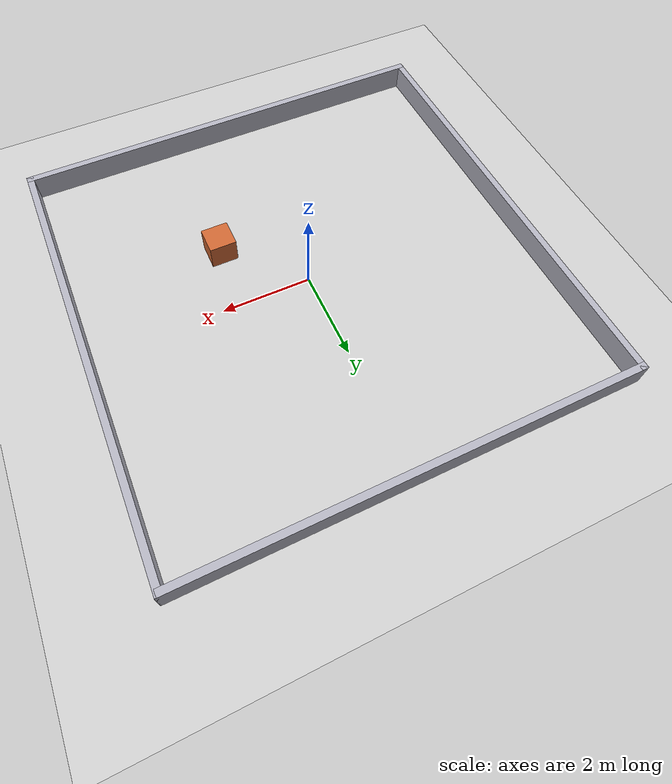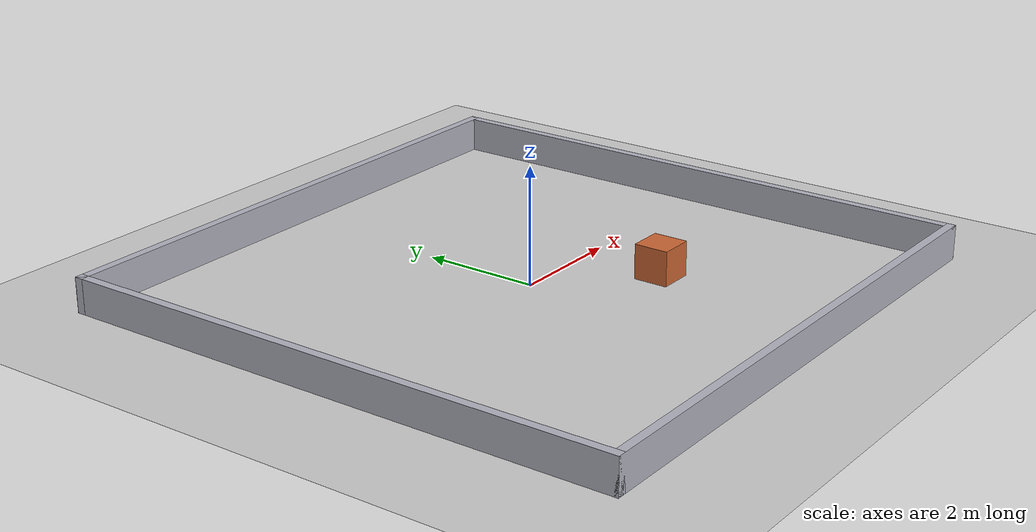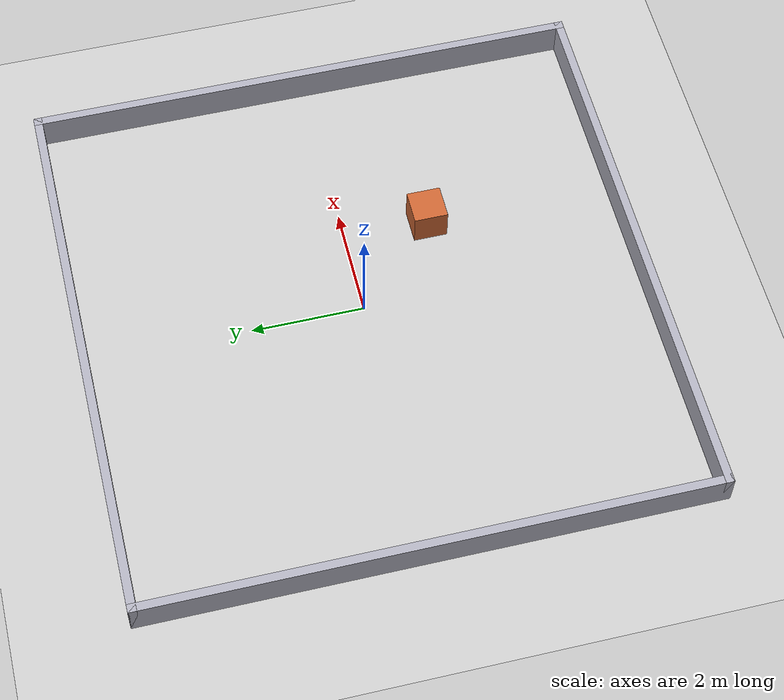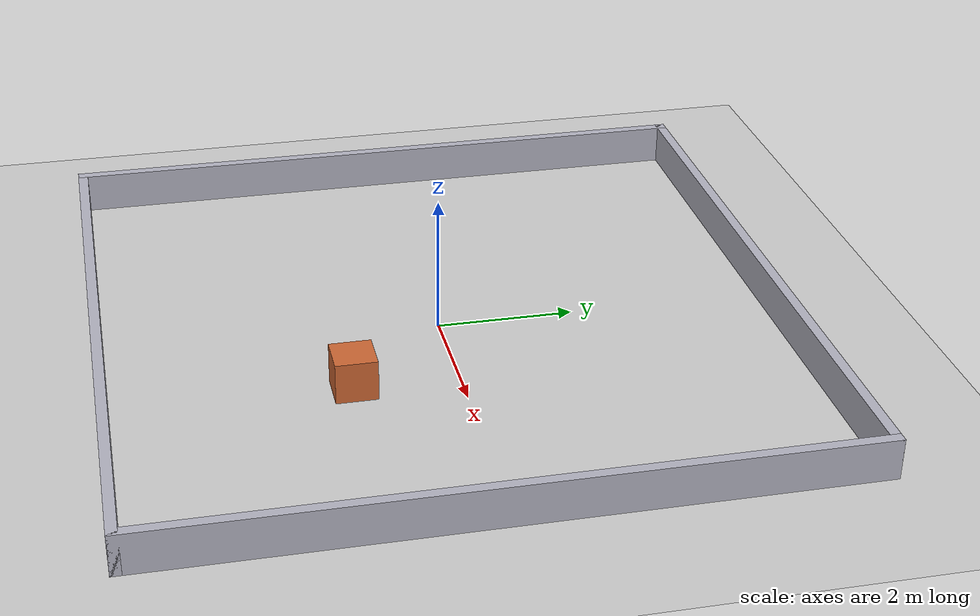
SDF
<?xml version="1.0"?>
<!-- 由 rl_nav/scripts/gen_room_assets.py 生成。改 room_spec.py 后重新生成。 -->
<sdf version="1.6">
  <world name="rl_room">
    <include><uri>model://sun</uri></include>
    <include><uri>model://ground_plane</uri></include>
    <physics type="ode">
      <max_step_size>0.001</max_step_size>
      <real_time_update_rate>1000</real_time_update_rate>
    </physics>
    <model name="wall_west">
      <static>true</static>
      <pose>-4.9250 0.0000 0.3000 0 0 0</pose>
      <link name="link">
        <collision name="collision">
          <geometry>
            <box><size>0.1500 10.0000 0.6000</size></box>
          </geometry>
        </collision>
        <visual name="visual">
          <geometry>
            <box><size>0.1500 10.0000 0.6000</size></box>
          </geometry>
          <material>
            <ambient>0.700 0.700 0.750 1</ambient>
            <diffuse>0.700 0.700 0.750 1</diffuse>
          </material>
        </visual>
      </link>
    </model>
    <model name="wall_east">
      <static>true</static>
      <pose>4.9250 0.0000 0.3000 0 0 0</pose>
      <link name="link">
        <collision name="collision">
          <geometry>
            <box><size>0.1500 10.0000 0.6000</size></box>
          </geometry>
        </collision>
        <visual name="visual">
          <geometry>
            <box><size>0.1500 10.0000 0.6000</size></box>
          </geometry>
          <material>
            <ambient>0.700 0.700 0.750 1</ambient>
            <diffuse>0.700 0.700 0.750 1</diffuse>
          </material>
        </visual>
      </link>
    </model>
    <model name="wall_south">
      <static>true</static>
      <pose>0.0000 -4.9250 0.3000 0 0 0</pose>
      <link name="link">
        <collision name="collision">
          <geometry>
            <box><size>10.0000 0.1500 0.6000</size></box>
          </geometry>
        </collision>
        <visual name="visual">
          <geometry>
            <box><size>10.0000 0.1500 0.6000</size></box>
          </geometry>
          <material>
            <ambient>0.700 0.700 0.750 1</ambient>
            <diffuse>0.700 0.700 0.750 1</diffuse>
          </material>
        </visual>
      </link>
    </model>
    <model name="wall_north">
      <static>true</static>
      <pose>0.0000 4.9250 0.3000 0 0 0</pose>
      <link name="link">
        <collision name="collision">
          <geometry>
            <box><size>10.0000 0.1500 0.6000</size></box>
          </geometry>
        </collision>
        <visual name="visual">
          <geometry>
            <box><size>10.0000 0.1500 0.6000</size></box>
          </geometry>
          <material>
            <ambient>0.700 0.700 0.750 1</ambient>
            <diffuse>0.700 0.700 0.750 1</diffuse>
          </material>
        </visual>
      </link>
    </model>
    <model name="obstacle">
      <static>true</static>
      <pose>1.5000 -1.5000 0.3000 0 0 0</pose>
      <link name="link">
        <collision name="collision">
          <geometry>
            <box><size>0.6000 0.6000 0.6000</size></box>
          </geometry>
        </collision>
        <visual name="visual">
          <geometry>
            <box><size>0.6000 0.6000 0.6000</size></box>
          </geometry>
          <material>
            <ambient>0.800 0.400 0.200 1</ambient>
            <diffuse>0.800 0.400 0.200 1</diffuse>
          </material>
        </visual>
      </link>
    </model>
  </world>
</sdf>
